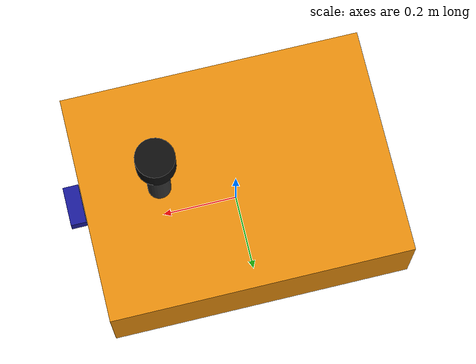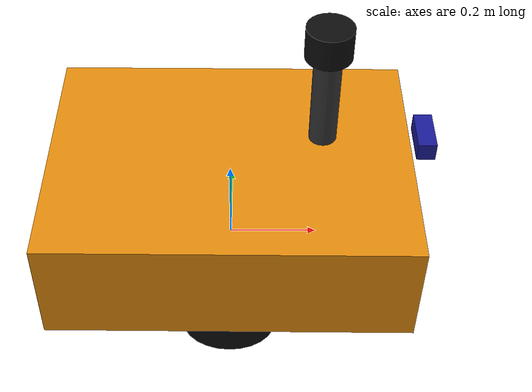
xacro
<?xml version="1.0"?>
<robot name="agv" xmlns:xacro="http://www.ros.org/wiki/xacro">
  <!-- ===== 0. THAM SỐ (truyền từ sim.launch) và HẰNG SỐ ===== -->
  <xacro:arg name="lidar_h_samples" default="720"/>   <!-- số tia ngang mỗi vòng quét -->
  <xacro:arg name="lidar_v_samples" default="24"/>    <!-- số tia dọc -->
  <xacro:arg name="gpu" default="false"/>             <!-- true: LiDAR tính bằng GPU (gpu_ray) -->

  <xacro:property name="r" value="0.10"/>             <!-- bán kính bánh (m) -->
  <xacro:property name="sep" value="0.50"/>           <!-- khoảng cách 2 bánh chủ động (m) -->
  <xacro:property name="PI" value="3.14159265"/>

  <!-- ===== 1. THÂN XE base_link =====
       Gốc tọa độ đặt tại tâm trục bánh. Gồm: khối lượng/quán tính, hộp thân xe,
       2 bánh tự lựa (quả cầu, ma sát 0) và cột gắn LiDAR (chỉ để nhìn). -->
  <link name="base_link">
    <inertial>
      <origin xyz="0 0 0.125"/>
      <mass value="80.0"/>
      <inertia ixx="2.817" iyy="4.683" izz="6.667" ixy="0" ixz="0" iyz="0"/>
    </inertial>
    <visual>
      <origin xyz="0 0 0.125"/>
      <geometry><box size="0.8 0.6 0.25"/></geometry>
      <material name="orange"><color rgba="0.9 0.55 0.05 1"/></material>
    </visual>
    <collision>
      <origin xyz="0 0 0.125"/>
      <geometry><box size="0.8 0.6 0.25"/></geometry>
    </collision>
    <!-- đáy bánh tự lựa cao hơn sàn 4 mm -> trọng lượng dồn lên 2 bánh chủ động (bám sàn),
         bánh tự lựa chỉ đỡ khi xe chúi (phanh/tăng tốc) -->
    <collision>
      <origin xyz="0.30 0 -0.046"/>
      <geometry><sphere radius="0.05"/></geometry>
    </collision>
    <collision>
      <origin xyz="-0.30 0 -0.046"/>
      <geometry><sphere radius="0.05"/></geometry>
    </collision>
    <visual>
      <origin xyz="0.2 0 0.40"/>
      <geometry><cylinder radius="0.03" length="0.20"/></geometry>
      <material name="dark"><color rgba="0.2 0.2 0.2 1"/></material>
    </visual>
  </link>

  <xacro:macro name="wheel" params="side y">
    <link name="${side}_wheel">
      <inertial>
        <mass value="2.0"/>
        <inertia ixx="0.00542" iyy="0.00542" izz="0.01" ixy="0" ixz="0" iyz="0"/>
      </inertial>
      <visual>
        <geometry><cylinder radius="${r}" length="0.05"/></geometry>
        <material name="black"><color rgba="0.05 0.05 0.05 1"/></material>
      </visual>
      <collision>
        <geometry><cylinder radius="${r}" length="0.05"/></geometry>
      </collision>
    </link>
    <joint name="${side}_wheel_joint" type="continuous">
      <parent link="base_link"/>
      <child link="${side}_wheel"/>
      <origin xyz="0 ${y} 0" rpy="${-PI/2} 0 0"/>
      <axis xyz="0 0 1"/>
    </joint>
    <gazebo reference="${side}_wheel">
      <mu1>1.0</mu1><mu2>1.0</mu2>
      <kp>1e6</kp><kd>100</kd>
      <minDepth>0.001</minDepth>
      <material>Gazebo/Black</material>
    </gazebo>
  </xacro:macro>
  <xacro:wheel side="left" y="${sep/2}"/>
  <xacro:wheel side="right" y="${-sep/2}"/>

  <link name="imu_link"/>
  <joint name="imu_joint" type="fixed">
    <parent link="base_link"/><child link="imu_link"/>
    <origin xyz="0 0 0.10"/>
  </joint>

  <link name="lidar_link">
    <visual>
      <geometry><cylinder radius="0.05" length="0.07"/></geometry>
      <material name="black"/>
    </visual>
  </link>
  <joint name="lidar_joint" type="fixed">
    <parent link="base_link"/><child link="lidar_link"/>
    <origin xyz="0.20 0 0.55"/>
  </joint>

  <link name="camera_link">
    <visual>
      <geometry><box size="0.04 0.10 0.04"/></geometry>
      <material name="blue"><color rgba="0.1 0.1 0.6 1"/></material>
    </visual>
  </link>
  <joint name="camera_joint" type="fixed">
    <parent link="base_link"/><child link="camera_link"/>
    <origin xyz="0.42 0 0.30"/>
  </joint>
  <link name="camera_optical_frame"/>
  <joint name="camera_optical_joint" type="fixed">
    <parent link="camera_link"/><child link="camera_optical_frame"/>
    <origin xyz="0 0 0" rpy="${-PI/2} 0 ${-PI/2}"/>
  </joint>

  <!-- ===== 4. PLUGIN GAZEBO: CẢM BIẾN ===== -->
  <!-- Ma sát 0 cho mọi va chạm của thân xe (gồm 2 bánh tự lựa) -->
  <gazebo reference="base_link">
    <mu1>0.0</mu1><mu2>0.0</mu2>
    <material>Gazebo/Orange</material>
  </gazebo>

  <!-- 4a. IMU -> /imu/data (200 Hz). Gia tốc đã gồm trọng lực, đơn vị m/s^2.
       Nhiễu: gyro 0.002 rad/s, gia tốc 0.02 m/s^2, kèm bias ngẫu nhiên (giống IMU MEMS). -->
  <gazebo reference="imu_link">
    <sensor name="imu" type="imu">
      <always_on>true</always_on>
      <update_rate>200</update_rate>
      <imu>
        <angular_velocity>
          <x><noise type="gaussian"><mean>0</mean><stddev>0.002</stddev><bias_mean>0.0005</bias_mean><bias_stddev>0.0001</bias_stddev></noise></x>
          <y><noise type="gaussian"><mean>0</mean><stddev>0.002</stddev><bias_mean>0.0005</bias_mean><bias_stddev>0.0001</bias_stddev></noise></y>
          <z><noise type="gaussian"><mean>0</mean><stddev>0.002</stddev><bias_mean>0.0005</bias_mean><bias_stddev>0.0001</bias_stddev></noise></z>
        </angular_velocity>
        <linear_acceleration>
          <x><noise type="gaussian"><mean>0</mean><stddev>0.02</stddev><bias_mean>0.01</bias_mean><bias_stddev>0.002</bias_stddev></noise></x>
          <y><noise type="gaussian"><mean>0</mean><stddev>0.02</stddev><bias_mean>0.01</bias_mean><bias_stddev>0.002</bias_stddev></noise></y>
          <z><noise type="gaussian"><mean>0</mean><stddev>0.02</stddev><bias_mean>0.01</bias_mean><bias_stddev>0.002</bias_stddev></noise></z>
        </linear_acceleration>
      </imu>
      <plugin name="imu_plugin" filename="libgazebo_ros_imu_sensor.so">
        <topicName>imu/data</topicName>
        <bodyName>imu_link</bodyName>
        <frameName>imu_link</frameName>
        <updateRateHZ>200.0</updateRateHZ>
        <gaussianNoise>0.0</gaussianNoise>
        <xyzOffset>0 0 0</xyzOffset>
        <rpyOffset>0 0 0</rpyOffset>
      </plugin>
    </sensor>
  </gazebo>

  <gazebo reference="lidar_link">
    <xacro:if value="$(arg gpu)">
      <xacro:property name="ray_type" value="gpu_ray"/>
      <xacro:property name="ray_lib" value="libgazebo_ros_velodyne_gpu_laser.so"/>
    </xacro:if>
    <xacro:unless value="$(arg gpu)">
      <xacro:property name="ray_type" value="ray"/>
      <xacro:property name="ray_lib" value="libgazebo_ros_velodyne_laser.so"/>
    </xacro:unless>
    <sensor name="lidar" type="${ray_type}">
      <always_on>true</always_on>
      <update_rate>10</update_rate>
      <visualize>false</visualize>
      <ray>
        <scan>
          <horizontal><samples>$(arg lidar_h_samples)</samples><resolution>1</resolution><min_angle>${-PI}</min_angle><max_angle>${PI}</max_angle></horizontal>
          <vertical><samples>$(arg lidar_v_samples)</samples><resolution>1</resolution><min_angle>-0.1222</min_angle><max_angle>0.9076</max_angle></vertical>
        </scan>
        <range><min>0.1</min><max>40.0</max><resolution>0.01</resolution></range>
      </ray>
      <plugin name="lidar_plugin" filename="${ray_lib}">
        <topicName>/lidar/points</topicName>
        <frameName>lidar_link</frameName>
        <organize_cloud>false</organize_cloud>
        <min_range>0.1</min_range>
        <max_range>40.0</max_range>
        <gaussianNoise>0.01</gaussianNoise>
      </plugin>
    </sensor>
  </gazebo>

  <!-- 4c. Camera -> /camera/image_raw + /camera/camera_info (640x480, 20 Hz, góc ngang 1.25 rad).
       Ảnh gắn frame camera_optical_frame; thông số nội tại ở config/camera_agv_sim.yaml. -->
  <gazebo reference="camera_link">
    <sensor name="camera" type="camera">
      <always_on>true</always_on>
      <update_rate>20</update_rate>
      <camera>
        <horizontal_fov>1.25</horizontal_fov>
        <image><width>640</width><height>480</height><format>R8G8B8</format></image>
        <clip><near>0.05</near><far>80</far></clip>
        <noise><type>gaussian</type><mean>0.0</mean><stddev>0.007</stddev></noise>
      </camera>
      <plugin name="camera_plugin" filename="libgazebo_ros_camera.so">
        <cameraName>camera</cameraName>
        <imageTopicName>image_raw</imageTopicName>
        <cameraInfoTopicName>camera_info</cameraInfoTopicName>
        <frameName>camera_optical_frame</frameName>
        <updateRate>20</updateRate>
      </plugin>
    </sensor>
  </gazebo>

  <!-- ===== 5. PLUGIN GAZEBO: DẪN ĐỘNG + GROUND TRUTH ===== -->
  <gazebo>
    <!-- 5a. Dẫn động vi sai: nhận /cmd_vel, quay 2 bánh, xuất góc bánh ra /joint_states.
         Odometry của plugin (diffdrive/odom) KHÔNG dùng cho thuật toán; encoder chuẩn do node wheel_encoder tính. -->
    <plugin name="diff_drive" filename="libgazebo_ros_diff_drive.so">
      <commandTopic>cmd_vel</commandTopic>
      <odometryTopic>diffdrive/odom</odometryTopic>
      <odometryFrame>odom</odometryFrame>
      <robotBaseFrame>base_link</robotBaseFrame>
      <odometrySource>encoder</odometrySource>
      <publishOdomTF>false</publishOdomTF>
      <publishWheelTF>false</publishWheelTF>
      <publishTf>false</publishTf>
      <publishWheelJointState>true</publishWheelJointState>
      <leftJoint>left_wheel_joint</leftJoint>
      <rightJoint>right_wheel_joint</rightJoint>
      <wheelSeparation>${sep}</wheelSeparation>
      <wheelDiameter>${2*r}</wheelDiameter>
      <wheelAcceleration>0</wheelAcceleration>  <!-- 0 = không giới hạn -> phanh gấp gây trượt -->
      <wheelTorque>60</wheelTorque>
      <updateRate>100</updateRate>
      <rosDebugLevel>na</rosDebugLevel>
    </plugin>

    <!-- 5b. Ground truth: tư thế thật của base_link trong world -> /ground_truth/odom (100 Hz).
         Dùng để điều khiển kịch bản, gán nhãn trượt và đánh giá sai số. -->
    <plugin name="ground_truth" filename="libgazebo_ros_p3d.so">
      <alwaysOn>true</alwaysOn>
      <updateRate>100.0</updateRate>
      <bodyName>base_link</bodyName>
      <topicName>ground_truth/odom</topicName>
      <frameName>world</frameName>
      <gaussianNoise>0.0</gaussianNoise>
    </plugin>
  </gazebo>
</robot>
